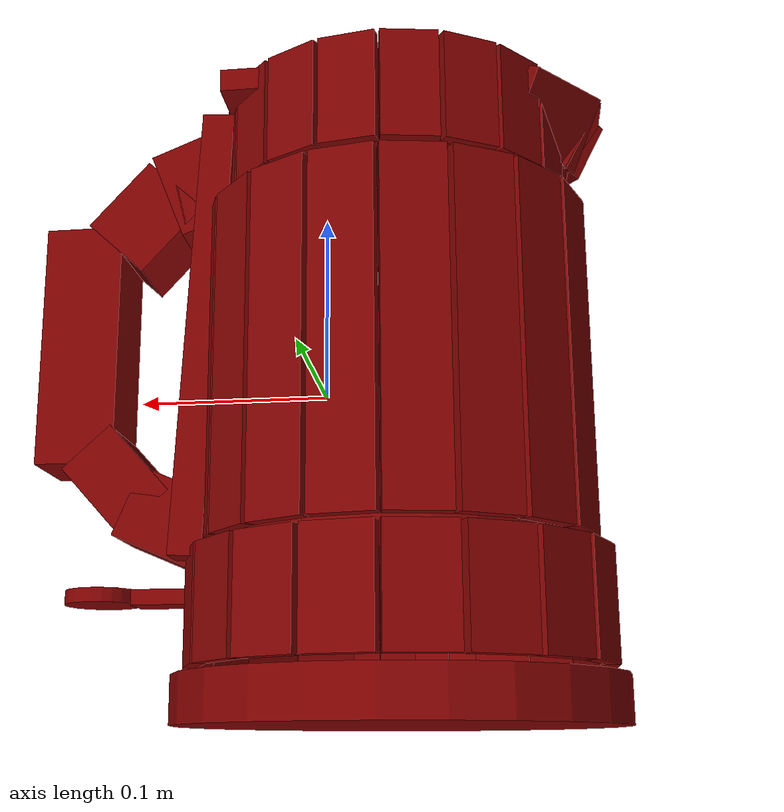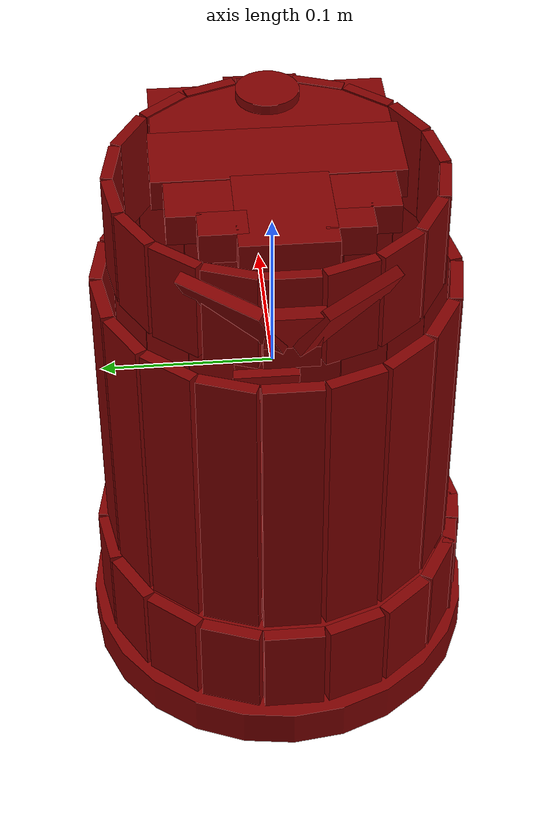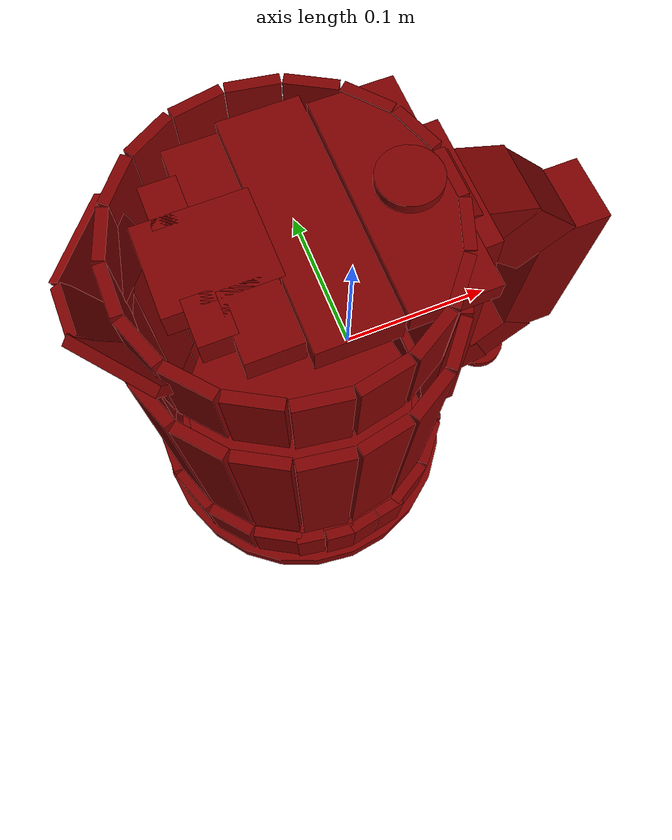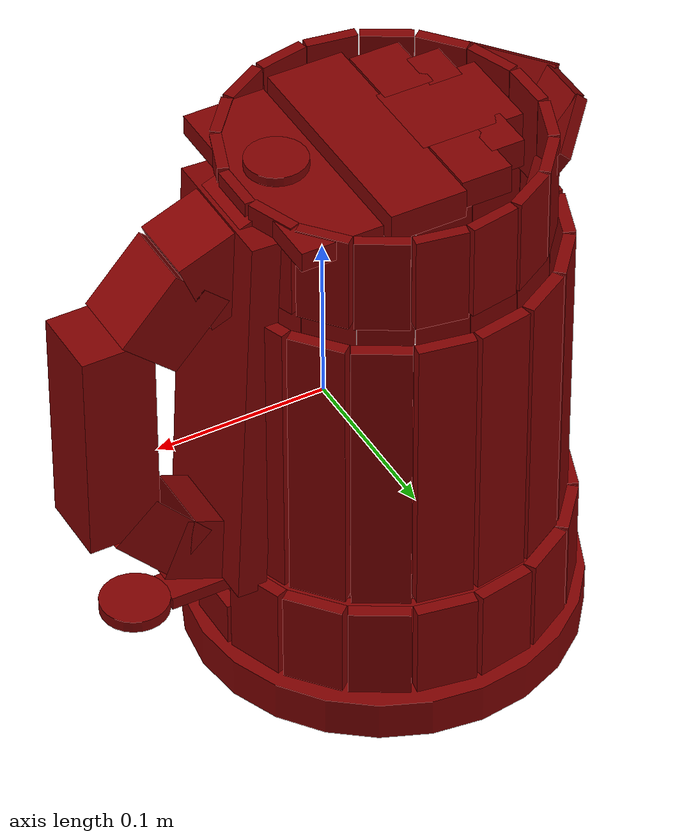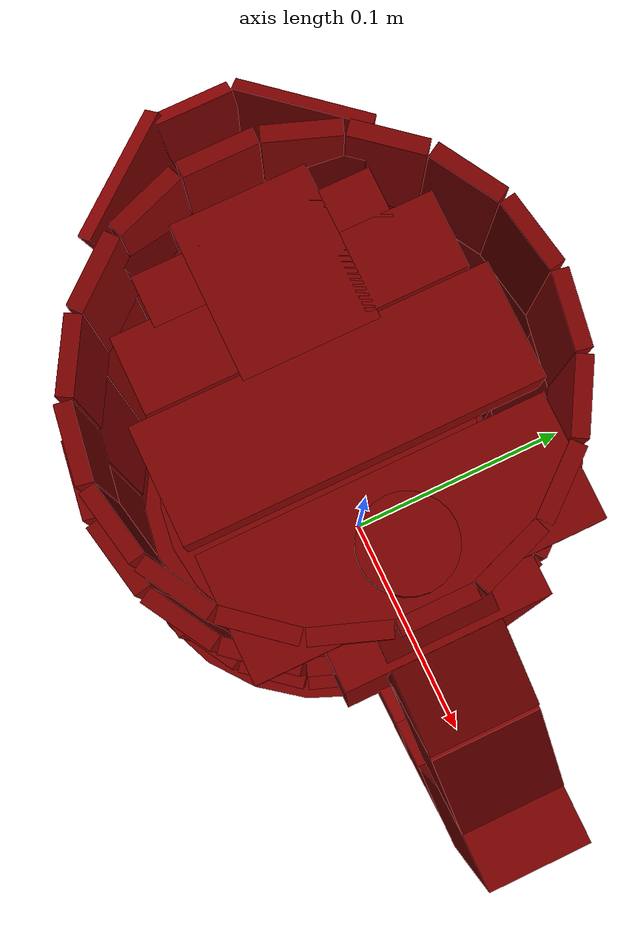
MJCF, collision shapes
<?xml version='1.0' encoding='UTF-8'?>
<mujoco model="model">
  <option timestep="0.002" gravity="0.0 0.0 -9.81"/>
  <compiler angle="radian"/>
  <asset>
    <mesh file="visuals/button_lid.obj" name="button_lid_vis"/>
    <mesh file="visuals/Body001.obj" name="Body001_vis"/>
    <mesh file="visuals/kettle_main.obj" name="kettle_main_vis"/>
    <mesh file="visuals/kettle_main_Clear.obj" name="kettle_main_Clear_vis"/>
    <mesh file="visuals/lid.obj" name="lid_vis"/>
    <mesh file="visuals/switch.obj" name="switch_vis"/>
    <texture file="visuals/T_BC001.png" name="Body001_material" type="2d"/>
    <material name="Body001_material" rgba="1 1 1 1.0" texture="Body001_material" shininess="0.5" specular="1"/>
    <texture file="visuals/T_BC001.png" name="kettle_main_material" type="2d"/>
    <material name="kettle_main_material" rgba="1 1 1 1.0" texture="kettle_main_material" shininess="0.5" specular="1"/>
    <texture file="visuals/T_BC001.png" name="button_lid_material" type="2d"/>
    <material name="button_lid_material" rgba="1 1 1 1.0" texture="button_lid_material" shininess="0.5" specular="1"/>
    <texture file="visuals/T_BC001.png" name="kettle_main_Clear_material" type="2d"/>
    <material name="kettle_main_Clear_material" rgba="1 1 1 0.699999988079071" texture="kettle_main_Clear_material" shininess="0.5" specular="1"/>
    <texture file="visuals/T_BC001.png" name="lid_material" type="2d"/>
    <material name="lid_material" rgba="1 1 1 1.0" texture="lid_material" shininess="0.5" specular="1"/>
    <texture file="visuals/T_BC001.png" name="switch_material" type="2d"/>
    <material name="switch_material" rgba="1 1 1 1.0" texture="switch_material" shininess="0.5" specular="1"/>
  </asset>
  <default>
    <default class="visual">
      <geom conaffinity="0" contype="0" group="1" type="mesh"/>
    </default>
    <default class="collision">
      <geom group="0" rgba="0.5 0 0 0.5"/>
    </default>
    <default class="spawn">
      <geom group="0" rgba="1 1 1 0.5" contype="0" conaffinity="0"/>
      <site group="0" rgba="1 1 1 0.5"/>
    </default>
    <default class="region">
      <geom group="1" conaffinity="0" contype="0" rgba="0 1 0 0" mass="0"/>
    </default>
  </default>
  <worldbody>
    <body>
      <body name="object">
        <geom mesh="Body001_vis" type="mesh" solimp="0.998 0.998 0.001" solref="0.001 1" friction="0.95 0.3 0.1" class="visual" material="Body001_material"/>
        <geom type="cylinder" pos="-0.03663462 0.00000002 -0.15673008" size="0.11323785781860352 0.012101196683943272" quat="1.0 0.0 0.0 0.0" class="collision"/>
        <body name="kettle_main">
          <geom mesh="kettle_main_vis" type="mesh" solimp="0.998 0.998 0.001" solref="0.001 1" friction="0.95 0.3 0.1" class="visual" material="kettle_main_material"/>
          <geom type="box" pos="-0.13985163 -0.00032412 -0.11241894" size="0.0038029812276363373 0.017222760245203972 0.028604567050933838" quat="1.0 0.0 0.0 0.0" class="collision"/>
          <geom type="box" pos="-0.13365173 0.03483723 -0.11241894" size="0.0038029812276363373 0.017222760245203972 0.028604567050933838" quat="0.9848077297210693 0.0 -0.0 -0.17364826798439026" class="collision"/>
          <geom type="box" pos="-0.11579987 0.06575760 -0.11241894" size="0.0038029812276363373 0.017222760245203972 0.028604567050933838" quat="0.9396926164627075 0.0 -0.0 -0.3420201539993286" class="collision"/>
          <geom type="box" pos="-0.08844920 0.08870754 -0.11241894" size="0.003802981460466981 0.01722276210784912 0.028604567050933838" quat="0.866025447845459 0.0 -0.0 -0.4999999701976776" class="collision"/>
          <geom type="box" pos="-0.05489862 0.10091894 -0.11241894" size="0.0038029812276363373 0.01722276210784912 0.028604567050933838" quat="0.7660444378852844 0.0 -0.0 -0.6427876353263855" class="collision"/>
          <geom type="box" pos="-0.01919486 0.10091895 -0.11241894" size="0.0038029812276363373 0.017222760245203972 0.028604567050933838" quat="0.6427875757217407 0.0 -0.0 -0.7660444974899292" class="collision"/>
          <geom type="box" pos="0.01435571 0.08870755 -0.11241894" size="0.003802981460466981 0.017222760245203972 0.028604567050933838" quat="0.5000000596046448 0.0 -0.0 -0.8660253882408142" class="collision"/>
          <geom type="box" pos="0.04170640 0.06575760 -0.11241894" size="0.0038029812276363373 0.017222760245203972 0.028604567050933838" quat="0.3420201539993286 0.0 -0.0 -0.9396926164627075" class="collision"/>
          <geom type="box" pos="0.05955828 0.03483723 -0.11241894" size="0.0038029812276363373 0.01722276210784912 0.028604567050933838" quat="0.17364822328090668 0.0 -0.0 -0.9848077297210693" class="collision"/>
          <geom type="box" pos="0.06575818 -0.00032410 -0.12854474" size="0.0038030410651117563 0.017223019152879715 0.01309843361377716" quat="1.0 0.0 0.0 0.0" class="collision"/>
          <geom type="box" pos="0.05955828 -0.03548547 -0.11241894" size="0.0038029812276363373 0.01722276210784912 0.028604567050933838" quat="0.17364822328090668 0.0 0.0 0.9848077297210693" class="collision"/>
          <geom type="box" pos="0.04170638 -0.06640586 -0.11241894" size="0.0038029812276363373 0.017222760245203972 0.028604567050933838" quat="0.34202027320861816 0.0 0.0 0.9396925568580627" class="collision"/>
          <geom type="box" pos="0.01435572 -0.08935579 -0.11241894" size="0.003802981460466981 0.017222760245203972 0.028604567050933838" quat="0.5000000596046448 0.0 0.0 0.8660253882408142" class="collision"/>
          <geom type="box" pos="-0.00588152 -0.09987818 -0.11241894" size="0.0038029809948056936 0.01052257139235735 0.028604567050933838" quat="0.6427876353263855 0.0 0.0 0.7660444378852844" class="collision"/>
          <geom type="box" pos="-0.06731777 -0.09938142 -0.11241894" size="0.0038029816932976246 0.01019357517361641 0.028604567050933838" quat="0.7660444378852844 0.0 0.0 0.6427876353263855" class="collision"/>
          <geom type="box" pos="-0.08844922 -0.08935577 -0.11241894" size="0.003802981460466981 0.01722276210784912 0.028604567050933838" quat="0.8660255074501038 0.0 0.0 0.4999997913837433" class="collision"/>
          <geom type="box" pos="-0.11579988 -0.06640583 -0.11241894" size="0.0038029812276363373 0.017222760245203972 0.028604567050933838" quat="0.9396926164627075 0.0 0.0 0.3420201539993286" class="collision"/>
          <geom type="box" pos="-0.13365176 -0.03548540 -0.11241894" size="0.0038029812276363373 0.01722276210784912 0.028604567050933838" quat="0.9848077893257141 0.0 0.0 0.1736479252576828" class="collision"/>
          <geom type="box" pos="0.05936805 0.00000791 0.03026299" size="0.00857990700751543 0.03885626792907715 0.11858449876308441" quat="0.9996725916862488 -7.246983609625259e-16 -0.025587743148207664 -3.437939488648567e-09" class="collision"/>
          <geom type="box" pos="-0.12398712 0.00061809 0.13238326" size="0.0032161162234842777 0.014564995653927326 0.028536276891827583" quat="1.0 0.0 0.0 0.0" class="collision"/>
          <geom type="box" pos="-0.11874396 0.03035345 0.13238326" size="0.0032161164563149214 0.014564993791282177 0.028536276891827583" quat="0.9848077297210693 0.0 -0.0 -0.17364826798439026" class="collision"/>
          <geom type="box" pos="-0.10364693 0.05650230 0.13238326" size="0.003216115990653634 0.014564993791282177 0.028536276891827583" quat="0.9396926164627075 0.0 -0.0 -0.3420201539993286" class="collision"/>
          <geom type="box" pos="-0.08051693 0.07591065 0.13238326" size="0.0032161157578229904 0.014564994722604752 0.028536276891827583" quat="0.866025447845459 0.0 -0.0 -0.4999999701976776" class="collision"/>
          <geom type="box" pos="-0.05214375 0.08623762 0.13238326" size="0.003216118086129427 0.014564991928637028 0.028536276891827583" quat="0.7660444378852844 0.0 -0.0 -0.6427876353263855" class="collision"/>
          <geom type="box" pos="-0.02194970 0.08623765 0.13238326" size="0.0032161162234842777 0.014564993791282177 0.028536276891827583" quat="0.6427875757217407 0.0 -0.0 -0.7660444974899292" class="collision"/>
          <geom type="box" pos="0.00642345 0.07591067 0.13238326" size="0.0032161162234842777 0.014564992859959602 0.028536276891827583" quat="0.5000000596046448 0.0 -0.0 -0.8660253882408142" class="collision"/>
          <geom type="box" pos="0.02955346 0.05650228 0.13238326" size="0.0032161162234842777 0.014564995653927326 0.028536276891827583" quat="0.3420201539993286 0.0 -0.0 -0.9396926164627075" class="collision"/>
          <geom type="box" pos="0.04465048 0.03035344 0.13238326" size="0.0032161155249923468 0.01456499844789505 0.028536276891827583" quat="0.17364822328090668 0.0 -0.0 -0.9848077297210693" class="collision"/>
          <geom type="box" pos="0.04989364 0.00061811 0.13320265" size="0.003216096665710211 0.014564995653927326 0.026827065274119377" quat="1.0 0.0 0.0 0.0" class="collision"/>
          <geom type="box" pos="0.04465050 -0.02911726 0.13238326" size="0.003216116689145565 0.014564999379217625 0.028536276891827583" quat="0.17364822328090668 0.0 0.0 0.9848077297210693" class="collision"/>
          <geom type="box" pos="0.02955345 -0.05526611 0.13238326" size="0.0032161178532987833 0.014564999379217625 0.028536276891827583" quat="0.34202027320861816 0.0 0.0 0.9396925568580627" class="collision"/>
          <geom type="box" pos="0.00642345 -0.07467447 0.13238326" size="0.003216116689145565 0.014564994722604752 0.028536276891827583" quat="0.5000000596046448 0.0 0.0 0.8660253882408142" class="collision"/>
          <geom type="box" pos="-0.08051699 -0.07467446 0.13238326" size="0.003216116689145565 0.01456499844789505 0.028536276891827583" quat="0.8660255074501038 0.0 0.0 0.4999997913837433" class="collision"/>
          <geom type="box" pos="-0.10364693 -0.05526609 0.13238326" size="0.0032161178532987833 0.014564997516572475 0.028536276891827583" quat="0.9396926164627075 0.0 0.0 0.3420201539993286" class="collision"/>
          <geom type="box" pos="-0.11874402 -0.02911720 0.13238326" size="0.003216116689145565 0.01456499844789505 0.028536276891827583" quat="0.9848077893257141 0.0 0.0 0.1736479252576828" class="collision"/>
          <geom type="box" pos="-0.02211409 -0.08505347 0.13238326" size="0.0032161164563149214 0.014564997516572475 0.028536276891827583" quat="0.6365191340446472 0.0 0.0 0.7712609171867371" class="collision"/>
          <geom type="box" pos="-0.05230412 -0.08554589 0.13238326" size="0.0032161178532987833 0.014564997516572475 0.028536276891827583" quat="0.7607770562171936 0.0 0.0 0.649013340473175" class="collision"/>
          <geom class="collision" type="box" pos="0.06318591 -0.00077526 0.12052153" size="0.023810403421521187 0.021033577620983124 0.024949699640274048" quat="6.761706572433468e-08 -0.18729208409786224 2.01860661519504e-08 -0.9823042750358582" name="handle_1"/>
          <geom class="collision" type="box" pos="0.09693900 -0.00077526 0.10052650" size="0.02381039783358574 0.021033577620983124 0.020623112097382545" quat="1.4059237685160042e-07 -0.4023577868938446 7.342559893430689e-09 -0.9154825210571289" name="handle_2"/>
          <geom class="collision" type="box" pos="0.13060802 -0.00077525 0.02952776" size="0.020921437069773674 0.021033460274338722 0.0654262974858284" quat="1.0 0.0 0.0 0.0" name="handle_main"/>
          <geom class="collision" type="box" pos="0.10794544 -0.00077524 -0.04494194" size="0.023810401558876038 0.021033577620983124 0.016938816756010056" quat="1.8325357586945756e-07 0.9143844246864319 -2.8854032052549883e-07 0.40484702587127686" name="handle_3"/>
          <geom class="collision" type="box" pos="0.07896181 -0.00077524 -0.06567073" size="0.02381039969623089 0.021033577620983124 0.019156059250235558" quat="1.304392043266489e-07 0.9797647595405579 -2.915321033469809e-07 0.20015253126621246" name="handle_4"/>
          <geom type="box" pos="0.02318280 -0.00000002 0.15415818" size="0.023765312507748604 0.0646960437297821 0.005883368197828531" quat="1.0 0.0 0.0 0.0" class="collision"/>
          <geom type="box" pos="-0.13665007 0.00061809 0.13768404" size="0.0032161162234842777 0.014564995653927326 0.020097581669688225" quat="0.9665632843971252 2.1661724131549938e-15 -0.25642818212509155 -3.4453400132861134e-08" class="collision"/>
          <geom type="box" pos="-0.12268750 0.03013106 0.13768404" size="0.0032161162234842777 0.025760723277926445 0.020097581669688225" quat="0.906714141368866 -0.08883118629455566 -0.24055026471614838 -0.33483436703681946" class="collision"/>
          <geom type="box" pos="-0.12614256 -0.02718220 0.13768404" size="0.0032161162234842777 0.025760723277926445 0.020097581669688225" quat="0.912358820438385 0.0846657082438469 -0.24204778671264648 0.3191332519054413" class="collision"/>
          <geom type="box" pos="-0.02694730 -0.10359265 -0.11241894" size="0.0038029809948056936 0.01052257139235735 0.028604567050933838" quat="0.6427876353263855 0.0 0.0 0.7660444378852844" class="collision"/>
          <geom type="box" pos="-0.04599904 -0.10423942 -0.11241894" size="0.0038029812276363373 0.010522570461034775 0.028604567050933838" quat="0.7489557266235352 0.0 0.0 0.6626200675964355" class="collision"/>
          <body name="button_lid">
            <joint axis="0.0 8.881784197001252e-15 -1.0" pos="0.02660317 0.00014485 0.16432958" limited="true" name="button_lid_joint" range="0.0 0.003" type="slide" damping="1" frictionloss="1" armature=".01" stiffness="0.5" springref="-0.5"/>
            <geom mesh="button_lid_vis" type="mesh" solimp="0.998 0.998 0.001" solref="0.001 1" friction="0.95 0.3 0.1" class="visual" material="button_lid_material"/>
            <geom class="collision" type="cylinder" pos="0.02671923 0.00014473 0.16725603" size="0.017381543293595314 0.002769363345578313" quat="1.0 0.0 0.0 0.0" name="button_lid_main"/>
          </body>
          <body name="kettle_main_Clear">
            <geom mesh="kettle_main_Clear_vis" type="mesh" solimp="0.998 0.998 0.001" solref="0.001 1" friction="0.95 0.3 0.1" class="visual" material="kettle_main_Clear_material"/>
            <geom type="box" pos="-0.13348833 0.00064784 0.00799294" size="0.0035675864201039076 0.016156639903783798 0.0879131481051445" quat="1.0 0.0 0.0 0.0" class="collision"/>
            <geom type="box" pos="-0.12767217 0.03363280 0.00799294" size="0.003567586885765195 0.016156714409589767 0.08791357278823853" quat="0.9848077297210693 0.0 -0.0 -0.17364826798439026" class="collision"/>
            <geom type="box" pos="-0.11092526 0.06263930 0.00799294" size="0.0035675859544426203 0.016156716272234917 0.08791357278823853" quat="0.9396926164627075 0.0 -0.0 -0.3420201539993286" class="collision"/>
            <geom type="box" pos="-0.08526752 0.08416868 0.00799294" size="0.0035675859544426203 0.016156714409589767 0.08791357278823853" quat="0.866025447845459 0.0 -0.0 -0.4999999701976776" class="collision"/>
            <geom type="box" pos="-0.05379362 0.09562422 0.00799294" size="0.003567588049918413 0.016156714409589767 0.08791357278823853" quat="0.7660444378852844 0.0 -0.0 -0.6427876353263855" class="collision"/>
            <geom type="box" pos="-0.02029984 0.09562425 0.00799294" size="0.0035675866529345512 0.016156714409589767 0.08791357278823853" quat="0.6427875757217407 0.0 -0.0 -0.7660444974899292" class="collision"/>
            <geom type="box" pos="0.01117405 0.08416870 0.00799294" size="0.003567586885765195 0.016156714409589767 0.08791357278823853" quat="0.5000000596046448 0.0 -0.0 -0.8660253882408142" class="collision"/>
            <geom type="box" pos="0.03683180 0.06263928 0.00799294" size="0.0035675859544426203 0.016156718134880066 0.08791357278823853" quat="0.3420201539993286 0.0 -0.0 -0.9396926164627075" class="collision"/>
            <geom type="box" pos="0.05357869 0.03363279 0.00799294" size="0.003567585488781333 0.016156718134880066 0.08791357278823853" quat="0.17364822328090668 0.0 -0.0 -0.9848077297210693" class="collision"/>
            <geom type="box" pos="0.05939484 0.00064786 0.01051727" size="0.0035676194820553064 0.016156718134880066 0.08264859765768051" quat="1.0 0.0 0.0 0.0" class="collision"/>
            <geom type="box" pos="0.05357870 -0.03233711 0.00799294" size="0.003567586885765195 0.016156723722815514 0.08791357278823853" quat="0.17364822328090668 0.0 0.0 0.9848077297210693" class="collision"/>
            <geom type="box" pos="0.03683178 -0.06134361 0.00799294" size="0.003567588049918413 0.016156723722815514 0.08791357278823853" quat="0.34202027320861816 0.0 0.0 0.9396925568580627" class="collision"/>
            <geom type="box" pos="0.01117405 -0.08287300 0.00799294" size="0.003567586885765195 0.016156714409589767 0.08791357278823853" quat="0.5000000596046448 0.0 0.0 0.8660253882408142" class="collision"/>
            <geom type="box" pos="-0.08526759 -0.08287300 0.00799294" size="0.0035675864201039076 0.016156719997525215 0.08791357278823853" quat="0.8660255074501038 0.0 0.0 0.4999997913837433" class="collision"/>
            <geom type="box" pos="-0.11092527 -0.06134359 0.00799294" size="0.003567588049918413 0.016156719997525215 0.08791357278823853" quat="0.9396926164627075 0.0 0.0 0.3420201539993286" class="collision"/>
            <geom type="box" pos="-0.12767223 -0.03233705 0.00799294" size="0.003567587351426482 0.016156718134880066 0.08791357278823853" quat="0.9848077893257141 0.0 0.0 0.1736479252576828" class="collision"/>
            <geom type="box" pos="-0.02048220 -0.09438625 0.00799294" size="0.003567586187273264 0.016156716272234917 0.08791357278823853" quat="0.6365191340446472 0.0 0.0 0.7712609171867371" class="collision"/>
            <geom type="box" pos="-0.05397150 -0.09493250 0.00799294" size="0.003567588049918413 0.016156718134880066 0.08791357278823853" quat="0.7607770562171936 0.0 0.0 0.649013340473175" class="collision"/>
            <geom type="cylinder" pos="-0.03663462 0.00000002 -0.08399986" size="0.08498886227607727 0.00908235926181078" quat="1.0 0.0 0.0 0.0" class="collision"/>
          </body>
          <body name="lid">
            <joint axis="0.0 1.0 0.0" pos="-0.00450826 -0.00000389 0.16267686" limited="true" name="lid_joint" range="0.0 1.5707963267948966" type="hinge" damping="1" frictionloss="0.1" armature=".01" stiffness="0.05" springref="-6"/>
            <geom mesh="lid_vis" type="mesh" solimp="0.998 0.998 0.001" solref="0.001 1" friction="0.95 0.3 0.1" class="visual" material="lid_material"/>
            <geom class="collision" type="box" pos="-0.02614610 0.00000000 0.15675875" size="0.022182608023285866 0.06655722856521606 0.008596892468631268" quat="1.0 0.0 0.0 0.0" name="lid_main"/>
            <geom class="collision" type="box" pos="-0.07589929 0.00003862 0.15675875" size="0.029840057715773582 0.025471679866313934 0.008596925064921379" quat="1.0 0.0 0.0 0.0" name="lid_1"/>
            <geom class="collision" type="box" pos="-0.06403767 0.04109196 0.15675875" size="0.01466391235589981 0.019164545461535454 0.008596925064921379" quat="1.0 0.0 0.0 0.0" name="lid_2"/>
            <geom class="collision" type="box" pos="-0.06403767 -0.04052017 0.15675875" size="0.01466391235589981 0.01916455663740635 0.008596925064921379" quat="1.0 0.0 0.0 0.0" name="lid_3"/>
            <geom class="collision" type="box" pos="-0.08555321 0.03196098 0.15675875" size="0.00975166168063879 0.012744667008519173 0.008596925064921379" quat="1.0 0.0 0.0 0.0" name="lid_4"/>
            <geom class="collision" type="box" pos="-0.08513340 -0.03185096 0.15675875" size="0.00975166168063879 0.012744667008519173 0.008596925064921379" quat="1.0 0.0 0.0 0.0" name="lid_5"/>
          </body>
          <body name="switch">
            <joint axis="0.0 0.0 -1.0" pos="0.07244617 -0.00010131 -0.10419340" limited="true" name="switch_joint" range="0.0 0.003" type="slide" damping="1" frictionloss="1" armature=".01" stiffness="0.05" springref="-2.0"/>
            <geom mesh="switch_vis" type="mesh" solimp="0.998 0.998 0.001" solref="0.001 1" friction="0.95 0.3 0.1" class="visual" material="switch_material"/>
            <geom class="collision" type="cylinder" pos="0.11713517 -0.00007841 -0.10388936" size="0.01972413808107376 0.003606347134336829" quat="1.0 0.0 0.0 0.0" name="switch_main"/>
            <geom type="box" pos="0.08062357 0.00000000 -0.10457336" size="0.018911199644207954 0.010567450895905495 0.003926997538655996" quat="1.0 0.0 0.0 0.0" class="collision"/>
          </body>
        </body>
        <geom class="region" name="reg_main" type="box" pos="0.0 -2.999999999808711e-08 2.7499999999403e-07" size="0.15051372 0.11393177 0.170677095"/>
      </body>
    </body>
  </worldbody>
  <actuator>
    <motor name="button_lid_joint_actuator" joint="button_lid_joint" gear="0.5"/>
    <motor name="lid_joint_actuator" joint="lid_joint" gear="0.5"/>
    <motor name="switch_joint_actuator" joint="switch_joint" gear="0.3"/>
  </actuator>
</mujoco>
